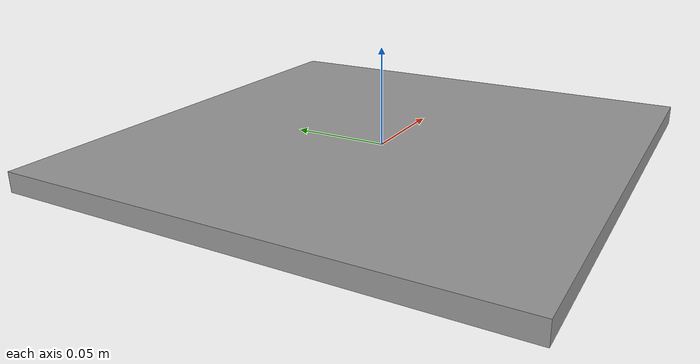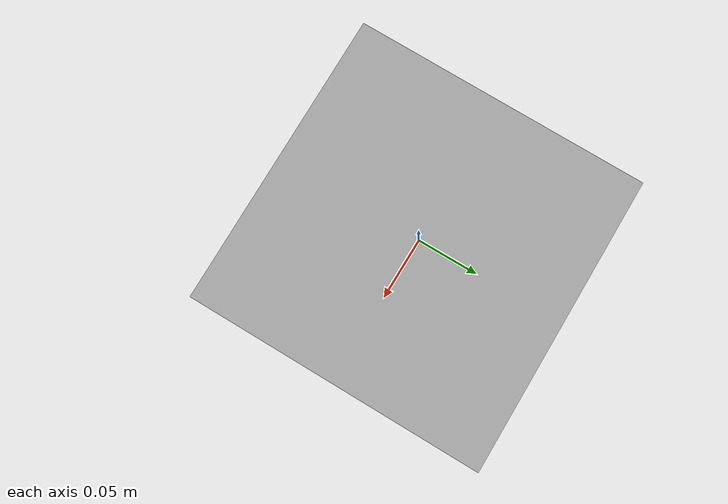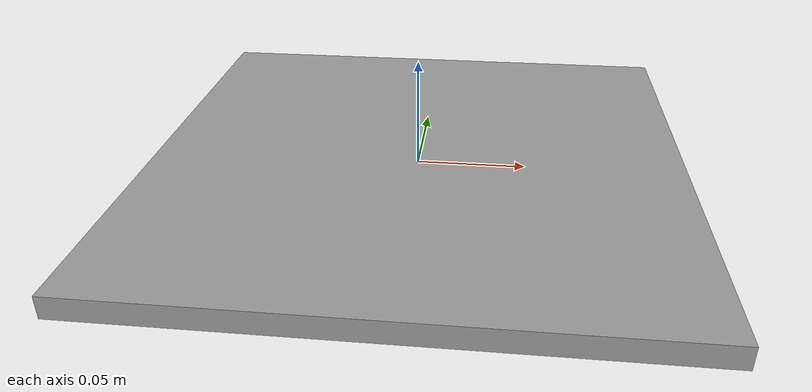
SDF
<?xml version='1.0'?>
<sdf version='1.7'>

  <model name='robot_plate'>
    <pose>0 0 0 0 -0 0</pose>
    <static>1</static>
    <self_collide>0</self_collide>
    <link name='robot_plate_link'>
      <inertial>
        <mass>1</mass>
        <inertia>
          <ixx>0.166667</ixx>
          <ixy>0</ixy>
          <ixz>0</ixz>
          <iyy>0.166667</iyy>
          <iyz>0</iyz>
          <izz>0.166667</izz>
        </inertia>
      </inertial>
      <visual name='robot_plate_visual'>
        <geometry>
          <box>
            <size>0.245 0.245 0.01</size>
          </box>
        </geometry>
        <material>
          <lighting>1</lighting>
          <script>
            <uri>file://media/materials/scripts/gazebo.material</uri>
            <name>Gazebo/Grey</name>
          </script>
        </material>
      </visual>
      <collision name='robot_plate_collision'>
        <geometry>
          <box>
            <size>0.245 0.245 0.009</size>
          </box>
        </geometry>
      </collision>
    </link>
  </model>

</sdf>
